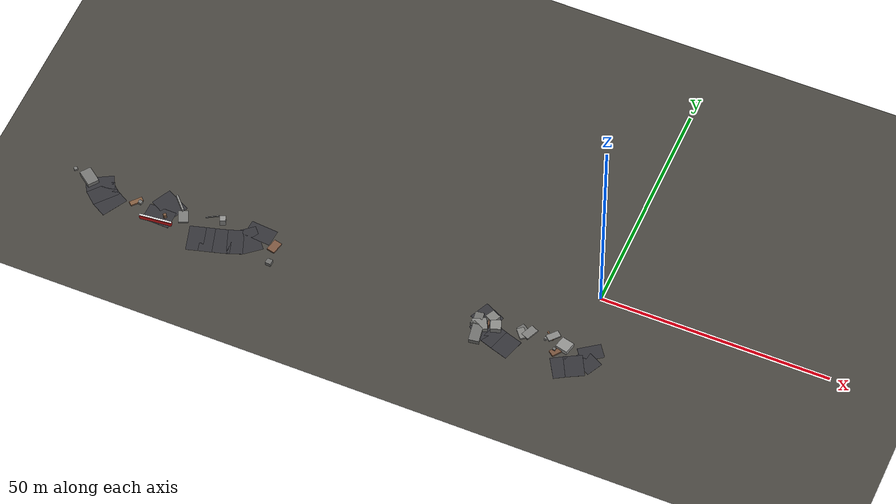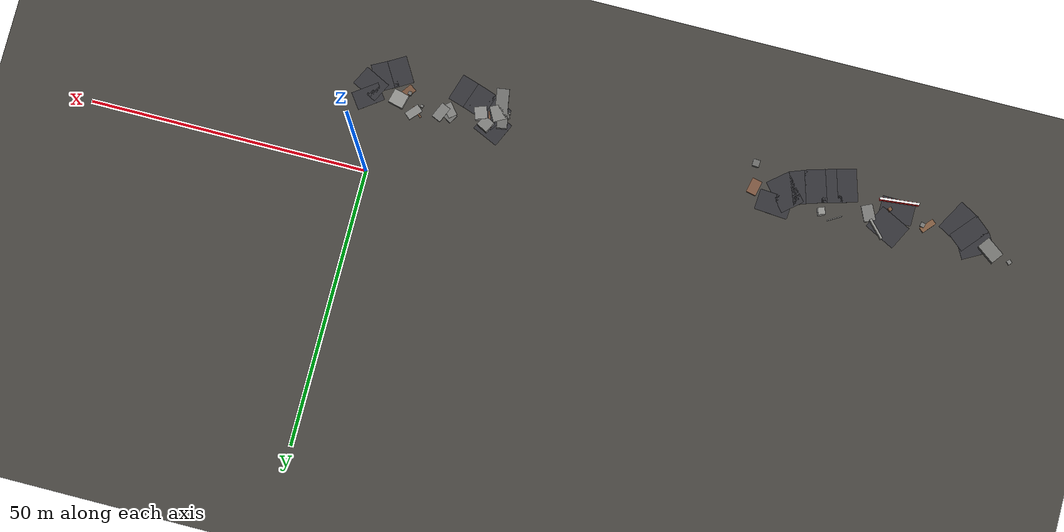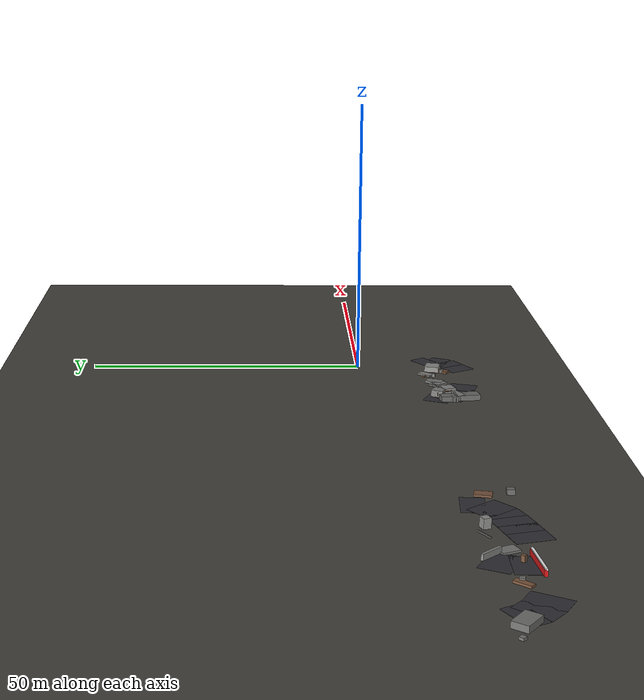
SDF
<sdf version="1.6">
 <world name="navitas_arena">
  <model name="ground_plane">
   <static>true</static>
   <link name="link">
    <collision name="collision">
     <geometry><plane><normal>0 0 1</normal><size>400 400</size></plane></geometry>
     <surface><friction><ode><mu>0.820</mu><mu2>0.820</mu2></ode></friction></surface>
    </collision>
    <visual name="visual">
     <cast_shadows>false</cast_shadows>
     <geometry><plane><normal>0 0 1</normal><size>400 400</size></plane></geometry>
     <material><ambient>0.280 0.270 0.250 1</ambient><diffuse>0.280 0.270 0.250 1</diffuse></material>
    </visual>
   </link>
  </model>
  <model name="road_kolay_1_3">
   <static>true</static>
   <pose>-103.113 -17.444 0.040 0 0 2.628</pose>
   <link name="link">
    <collision name="col"><geometry><box><size>3.838 6.000 0.020</size></box></geometry></collision>
    <visual name="vis">
     <geometry><box><size>3.838 6.000 0.020</size></box></geometry>
     <material><ambient>0.20 0.20 0.22 1</ambient><diffuse>0.20 0.20 0.22 1</diffuse></material>
    </visual>
   </link>
  </model>
  <model name="road_kolay_1_4">
   <static>true</static>
   <pose>-105.395 -15.861 0.040 0 0 2.432</pose>
   <link name="link">
    <collision name="col"><geometry><box><size>3.544 6.000 0.020</size></box></geometry></collision>
    <visual name="vis">
     <geometry><box><size>3.544 6.000 0.020</size></box></geometry>
     <material><ambient>0.20 0.20 0.22 1</ambient><diffuse>0.20 0.20 0.22 1</diffuse></material>
    </visual>
   </link>
  </model>
  <model name="road_kolay_1_5">
   <static>true</static>
   <pose>-106.995 -13.926 0.040 0 0 2.078</pose>
   <link name="link">
    <collision name="col"><geometry><box><size>3.357 6.000 0.020</size></box></geometry></collision>
    <visual name="vis">
     <geometry><box><size>3.357 6.000 0.020</size></box></geometry>
     <material><ambient>0.20 0.20 0.22 1</ambient><diffuse>0.20 0.20 0.22 1</diffuse></material>
    </visual>
   </link>
  </model>
  <model name="road_kolay_2_2">
   <static>true</static>
   <pose>-92.175 -16.583 0.040 0 0 1.553</pose>
   <link name="link">
    <collision name="col"><geometry><box><size>4.067 6.000 0.020</size></box></geometry></collision>
    <visual name="vis">
     <geometry><box><size>4.067 6.000 0.020</size></box></geometry>
     <material><ambient>0.20 0.20 0.22 1</ambient><diffuse>0.20 0.20 0.22 1</diffuse></material>
    </visual>
   </link>
  </model>
  <model name="road_kolay_2_3">
   <static>true</static>
   <pose>-91.289 -13.328 0.040 0 0 1.097</pose>
   <link name="link">
    <collision name="col"><geometry><box><size>4.657 6.000 0.020</size></box></geometry></collision>
    <visual name="vis">
     <geometry><box><size>4.657 6.000 0.020</size></box></geometry>
     <material><ambient>0.20 0.20 0.22 1</ambient><diffuse>0.20 0.20 0.22 1</diffuse></material>
    </visual>
   </link>
  </model>
  <model name="road_kolay_3_4">
   <static>true</static>
   <pose>-82.713 -18.775 0.040 0 0 0.281</pose>
   <link name="link">
    <collision name="col"><geometry><box><size>3.518 6.000 0.020</size></box></geometry></collision>
    <visual name="vis">
     <geometry><box><size>3.518 6.000 0.020</size></box></geometry>
     <material><ambient>0.20 0.20 0.22 1</ambient><diffuse>0.20 0.20 0.22 1</diffuse></material>
    </visual>
   </link>
  </model>
  <model name="road_kolay_3_5">
   <static>true</static>
   <pose>-80.083 -18.038 0.040 0 0 0.267</pose>
   <link name="link">
    <collision name="col"><geometry><box><size>3.745 6.000 0.020</size></box></geometry></collision>
    <visual name="vis">
     <geometry><box><size>3.745 6.000 0.020</size></box></geometry>
     <material><ambient>0.20 0.20 0.22 1</ambient><diffuse>0.20 0.20 0.22 1</diffuse></material>
    </visual>
   </link>
  </model>
  <model name="road_kolay_3_6">
   <static>true</static>
   <pose>-77.370 -17.263 0.040 0 0 0.290</pose>
   <link name="link">
    <collision name="col"><geometry><box><size>3.699 6.000 0.020</size></box></geometry></collision>
    <visual name="vis">
     <geometry><box><size>3.699 6.000 0.020</size></box></geometry>
     <material><ambient>0.20 0.20 0.22 1</ambient><diffuse>0.20 0.20 0.22 1</diffuse></material>
    </visual>
   </link>
  </model>
  <model name="road_kolay_3_7">
   <static>true</static>
   <pose>-74.865 -16.423 0.040 0 0 0.361</pose>
   <link name="link">
    <collision name="col"><geometry><box><size>3.388 6.000 0.020</size></box></geometry></collision>
    <visual name="vis">
     <geometry><box><size>3.388 6.000 0.020</size></box></geometry>
     <material><ambient>0.20 0.20 0.22 1</ambient><diffuse>0.20 0.20 0.22 1</diffuse></material>
    </visual>
   </link>
  </model>
  <model name="road_kolay_3_8">
   <static>true</static>
   <pose>-72.375 -14.872 0.040 0 0 0.698</pose>
   <link name="link">
    <collision name="col"><geometry><box><size>4.361 6.000 0.020</size></box></geometry></collision>
    <visual name="vis">
     <geometry><box><size>4.361 6.000 0.020</size></box></geometry>
     <material><ambient>0.20 0.20 0.22 1</ambient><diffuse>0.20 0.20 0.22 1</diffuse></material>
    </visual>
   </link>
  </model>
  <model name="road_kolay_3_9">
   <static>true</static>
   <pose>-70.939 -12.340 0.040 0 0 1.493</pose>
   <link name="link">
    <collision name="col"><geometry><box><size>3.749 6.000 0.020</size></box></geometry></collision>
    <visual name="vis">
     <geometry><box><size>3.749 6.000 0.020</size></box></geometry>
     <material><ambient>0.20 0.20 0.22 1</ambient><diffuse>0.20 0.20 0.22 1</diffuse></material>
    </visual>
   </link>
  </model>
  <model name="blk_kolay_1_0_1">
   <static>true</static>
   <pose>-109.596 -13.677 0.500 0 0 2.502</pose>
   <link name="link">
    <collision name="col"><geometry><box><size>3.801 2.501 1.000</size></box></geometry></collision>
    <visual name="vis">
     <geometry><box><size>3.801 2.501 1.000</size></box></geometry>
     <material><ambient>0.46 0.46 0.45 1</ambient><diffuse>0.46 0.46 0.45 1</diffuse></material>
    </visual>
   </link>
  </model>
  <model name="bar_kolay_2">
   <static>true</static>
   <pose>-92.203 -18.167 0.500 0 0 3.241</pose>
   <link name="link">
    <collision name="col"><geometry><box><size>7.000 0.500 1.000</size></box></geometry></collision>
    <visual name="vis">
     <geometry><box><size>7.000 0.500 1.000</size></box></geometry>
     <material><ambient>0.85 0.10 0.10 1</ambient><diffuse>0.85 0.10 0.10 1</diffuse></material>
    </visual>
   </link>
  </model>
  <model name="bar_kolay_2b">
   <static>true</static>
   <pose>-92.203 -18.167 1.000 0 0 3.241</pose>
   <link name="link">
    <collision name="col"><geometry><box><size>7.000 0.400 0.300</size></box></geometry></collision>
    <visual name="vis">
     <geometry><box><size>7.000 0.400 0.300</size></box></geometry>
     <material><ambient>0.95 0.95 0.95 1</ambient><diffuse>0.95 0.95 0.95 1</diffuse></material>
    </visual>
   </link>
  </model>
  <model name="blk_kolay_2_0_3">
   <static>true</static>
   <pose>-89.310 -12.367 0.500 0 0 2.321</pose>
   <link name="link">
    <collision name="col"><geometry><box><size>3.957 0.406 1.000</size></box></geometry></collision>
    <visual name="vis">
     <geometry><box><size>3.957 0.406 1.000</size></box></geometry>
     <material><ambient>0.57 0.57 0.56 1</ambient><diffuse>0.57 0.57 0.56 1</diffuse></material>
    </visual>
   </link>
  </model>
  <model name="deb_kolay_12">
   <static>true</static>
   <pose>-81.868 -12.493 0.123 0 0 0.534</pose>
   <link name="link">
    <collision name="col"><geometry><box><size>2.913 0.177 0.247</size></box></geometry></collision>
    <visual name="vis">
     <geometry><box><size>2.913 0.177 0.247</size></box></geometry>
     <material><ambient>0.44 0.44 0.43 1</ambient><diffuse>0.44 0.44 0.43 1</diffuse></material>
    </visual>
   </link>
  </model>
  <model name="deb_kolay_43">
   <static>true</static>
   <pose>-97.096 -15.183 0.306 0 0 2.922</pose>
   <link name="link">
    <collision name="col"><geometry><box><size>0.783 0.783 0.611</size></box></geometry></collision>
    <visual name="vis">
     <geometry><box><size>0.783 0.783 0.611</size></box></geometry>
     <material><ambient>0.46 0.46 0.45 1</ambient><diffuse>0.46 0.46 0.45 1</diffuse></material>
    </visual>
   </link>
  </model>
  <model name="deb_kolay_48">
   <static>true</static>
   <pose>-98.027 -15.254 0.185 0 0 0.854</pose>
   <link name="link">
    <collision name="col"><geometry><box><size>2.819 1.029 0.370</size></box></geometry></collision>
    <visual name="vis">
     <geometry><box><size>2.819 1.029 0.370</size></box></geometry>
     <material><ambient>0.51 0.36 0.25 1</ambient><diffuse>0.51 0.36 0.25 1</diffuse></material>
    </visual>
   </link>
  </model>
  <model name="deb_kolay_60">
   <static>true</static>
   <pose>-66.201 -18.562 0.414 0 0 1.528</pose>
   <link name="link">
    <collision name="col"><geometry><box><size>1.235 1.235 0.828</size></box></geometry></collision>
    <visual name="vis">
     <geometry><box><size>1.235 1.235 0.828</size></box></geometry>
     <material><ambient>0.42 0.42 0.41 1</ambient><diffuse>0.42 0.42 0.41 1</diffuse></material>
    </visual>
   </link>
  </model>
  <model name="deb_kolay_99">
   <static>true</static>
   <pose>-113.321 -12.569 0.204 0 0 0.782</pose>
   <link name="link">
    <collision name="col"><geometry><box><size>0.753 0.753 0.408</size></box></geometry></collision>
    <visual name="vis">
     <geometry><box><size>0.753 0.753 0.408</size></box></geometry>
     <material><ambient>0.48 0.48 0.47 1</ambient><diffuse>0.48 0.48 0.47 1</diffuse></material>
    </visual>
   </link>
  </model>
  <model name="deb_kolay_105">
   <static>true</static>
   <pose>-79.251 -12.974 0.799 0 0 0.375</pose>
   <link name="link">
    <collision name="col"><geometry><box><size>1.244 1.244 1.598</size></box></geometry></collision>
    <visual name="vis">
     <geometry><box><size>1.244 1.244 1.598</size></box></geometry>
     <material><ambient>0.57 0.57 0.56 1</ambient><diffuse>0.57 0.57 0.56 1</diffuse></material>
    </visual>
   </link>
  </model>
  <model name="deb_kolay_110">
   <static>true</static>
   <pose>-87.406 -14.901 0.163 0 0 2.005</pose>
   <link name="link">
    <collision name="col"><geometry><box><size>2.914 2.057 0.325</size></box></geometry></collision>
    <visual name="vis">
     <geometry><box><size>2.914 2.057 0.325</size></box></geometry>
     <material><ambient>0.48 0.48 0.47 1</ambient><diffuse>0.48 0.48 0.47 1</diffuse></material>
    </visual>
   </link>
  </model>
  <model name="deb_kolay_134">
   <static>true</static>
   <pose>-66.887 -14.422 0.182 0 0 1.361</pose>
   <link name="link">
    <collision name="col"><geometry><box><size>2.731 1.789 0.364</size></box></geometry></collision>
    <visual name="vis">
     <geometry><box><size>2.731 1.789 0.364</size></box></geometry>
     <material><ambient>0.49 0.34 0.25 1</ambient><diffuse>0.49 0.34 0.25 1</diffuse></material>
    </visual>
   </link>
  </model>
  <model name="chic_kolay_0">
   <static>true</static>
   <pose>-90.911 -16.430 0.500 0 0 2.411</pose>
   <link name="link">
    <collision name="col"><geometry><box><size>0.618 0.618 1.000</size></box></geometry></collision>
    <visual name="vis">
     <geometry><box><size>0.618 0.618 1.000</size></box></geometry>
     <material><ambient>0.49 0.35 0.25 1</ambient><diffuse>0.49 0.35 0.25 1</diffuse></material>
    </visual>
   </link>
  </model>
  <model name="road_orta_1_3">
   <static>true</static>
   <pose>-13.417 -18.160 0.040 0 0 2.839</pose>
   <link name="link">
    <collision name="col"><geometry><box><size>3.953 5.000 0.020</size></box></geometry></collision>
    <visual name="vis">
     <geometry><box><size>3.953 5.000 0.020</size></box></geometry>
     <material><ambient>0.20 0.20 0.22 1</ambient><diffuse>0.20 0.20 0.22 1</diffuse></material>
    </visual>
   </link>
  </model>
  <model name="road_orta_1_4">
   <static>true</static>
   <pose>-16.300 -17.214 0.040 0 0 2.810</pose>
   <link name="link">
    <collision name="col"><geometry><box><size>3.917 5.000 0.020</size></box></geometry></collision>
    <visual name="vis">
     <geometry><box><size>3.917 5.000 0.020</size></box></geometry>
     <material><ambient>0.20 0.20 0.22 1</ambient><diffuse>0.20 0.20 0.22 1</diffuse></material>
    </visual>
   </link>
  </model>
  <model name="road_orta_1_5">
   <static>true</static>
   <pose>-19.071 -15.861 0.040 0 0 2.572</pose>
   <link name="link">
    <collision name="col"><geometry><box><size>4.094 5.000 0.020</size></box></geometry></collision>
    <visual name="vis">
     <geometry><box><size>4.094 5.000 0.020</size></box></geometry>
     <material><ambient>0.20 0.20 0.22 1</ambient><diffuse>0.20 0.20 0.22 1</diffuse></material>
    </visual>
   </link>
  </model>
  <model name="road_orta_1_6">
   <static>true</static>
   <pose>-19.651 -13.328 0.040 0 0 1.142</pose>
   <link name="link">
    <collision name="col"><geometry><box><size>4.577 5.000 0.020</size></box></geometry></collision>
    <visual name="vis">
     <geometry><box><size>4.577 5.000 0.020</size></box></geometry>
     <material><ambient>0.20 0.20 0.22 1</ambient><diffuse>0.20 0.20 0.22 1</diffuse></material>
    </visual>
   </link>
  </model>
  <model name="road_orta_2_1">
   <static>true</static>
   <pose>-1.335 -18.833 0.040 0 0 0.536</pose>
   <link name="link">
    <collision name="col"><geometry><box><size>3.511 5.000 0.020</size></box></geometry></collision>
    <visual name="vis">
     <geometry><box><size>3.511 5.000 0.020</size></box></geometry>
     <material><ambient>0.20 0.20 0.22 1</ambient><diffuse>0.20 0.20 0.22 1</diffuse></material>
    </visual>
   </link>
  </model>
  <model name="road_orta_2_2">
   <static>true</static>
   <pose>1.156 -17.444 0.040 0 0 0.486</pose>
   <link name="link">
    <collision name="col"><geometry><box><size>3.995 5.000 0.020</size></box></geometry></collision>
    <visual name="vis">
     <geometry><box><size>3.995 5.000 0.020</size></box></geometry>
     <material><ambient>0.20 0.20 0.22 1</ambient><diffuse>0.20 0.20 0.22 1</diffuse></material>
    </visual>
   </link>
  </model>
  <model name="road_orta_2_3">
   <static>true</static>
   <pose>3.175 -15.427 0.040 0 0 1.106</pose>
   <link name="link">
    <collision name="col"><geometry><box><size>3.799 5.000 0.020</size></box></geometry></collision>
    <visual name="vis">
     <geometry><box><size>3.799 5.000 0.020</size></box></geometry>
     <material><ambient>0.20 0.20 0.22 1</ambient><diffuse>0.20 0.20 0.22 1</diffuse></material>
    </visual>
   </link>
  </model>
  <model name="road_orta_2_4">
   <static>true</static>
   <pose>3.120 -13.153 0.040 0 0 2.196</pose>
   <link name="link">
    <collision name="col"><geometry><box><size>3.312 5.000 0.020</size></box></geometry></collision>
    <visual name="vis">
     <geometry><box><size>3.312 5.000 0.020</size></box></geometry>
     <material><ambient>0.20 0.20 0.22 1</ambient><diffuse>0.20 0.20 0.22 1</diffuse></material>
    </visual>
   </link>
  </model>
  <model name="blk_orta_1_0_0">
   <static>true</static>
   <pose>-20.149 -17.893 0.500 0 0 1.729</pose>
   <link name="link">
    <collision name="col"><geometry><box><size>4.793 2.223 1.000</size></box></geometry></collision>
    <visual name="vis">
     <geometry><box><size>4.793 2.223 1.000</size></box></geometry>
     <material><ambient>0.44 0.44 0.43 1</ambient><diffuse>0.44 0.44 0.43 1</diffuse></material>
    </visual>
   </link>
  </model>
  <model name="blk_orta_1_0_1">
   <static>true</static>
   <pose>-18.009 -13.861 0.500 0 0 2.092</pose>
   <link name="link">
    <collision name="col"><geometry><box><size>0.652 0.652 1.000</size></box></geometry></collision>
    <visual name="vis">
     <geometry><box><size>0.652 0.652 1.000</size></box></geometry>
     <material><ambient>0.59 0.59 0.58 1</ambient><diffuse>0.59 0.59 0.58 1</diffuse></material>
    </visual>
   </link>
  </model>
  <model name="blk_orta_1_0_2">
   <static>true</static>
   <pose>-17.036 -15.044 0.647 0 0 0.344</pose>
   <link name="link">
    <collision name="col"><geometry><box><size>2.237 2.237 1.294</size></box></geometry></collision>
    <visual name="vis">
     <geometry><box><size>2.237 2.237 1.294</size></box></geometry>
     <material><ambient>0.54 0.54 0.53 1</ambient><diffuse>0.54 0.54 0.53 1</diffuse></material>
    </visual>
   </link>
  </model>
  <model name="blk_orta_1_0_3">
   <static>true</static>
   <pose>-21.038 -14.723 0.500 0 0 1.711</pose>
   <link name="link">
    <collision name="col"><geometry><box><size>2.816 1.821 1.000</size></box></geometry></collision>
    <visual name="vis">
     <geometry><box><size>2.816 1.821 1.000</size></box></geometry>
     <material><ambient>0.43 0.43 0.42 1</ambient><diffuse>0.43 0.43 0.42 1</diffuse></material>
    </visual>
   </link>
  </model>
  <model name="blk_orta_1_0_4">
   <static>true</static>
   <pose>-18.336 -13.358 0.628 0 0 1.096</pose>
   <link name="link">
    <collision name="col"><geometry><box><size>2.135 2.135 1.255</size></box></geometry></collision>
    <visual name="vis">
     <geometry><box><size>2.135 2.135 1.255</size></box></geometry>
     <material><ambient>0.50 0.50 0.49 1</ambient><diffuse>0.50 0.50 0.49 1</diffuse></material>
    </visual>
   </link>
  </model>
  <model name="blk_orta_1_0_5">
   <static>true</static>
   <pose>-20.205 -15.966 0.500 0 0 2.066</pose>
   <link name="link">
    <collision name="col"><geometry><box><size>2.810 2.992 1.000</size></box></geometry></collision>
    <visual name="vis">
     <geometry><box><size>2.810 2.992 1.000</size></box></geometry>
     <material><ambient>0.51 0.51 0.50 1</ambient><diffuse>0.51 0.51 0.50 1</diffuse></material>
    </visual>
   </link>
  </model>
  <model name="blk_orta_1_0_6">
   <static>true</static>
   <pose>-20.641 -16.072 0.500 0 0 0.109</pose>
   <link name="link">
    <collision name="col"><geometry><box><size>3.028 0.337 1.000</size></box></geometry></collision>
    <visual name="vis">
     <geometry><box><size>3.028 0.337 1.000</size></box></geometry>
     <material><ambient>0.46 0.46 0.45 1</ambient><diffuse>0.46 0.46 0.45 1</diffuse></material>
    </visual>
   </link>
  </model>
  <model name="blk_orta_1_0_7">
   <static>true</static>
   <pose>-18.822 -14.323 0.500 0 0 1.889</pose>
   <link name="link">
    <collision name="col"><geometry><box><size>2.859 0.285 1.000</size></box></geometry></collision>
    <visual name="vis">
     <geometry><box><size>2.859 0.285 1.000</size></box></geometry>
     <material><ambient>0.49 0.34 0.25 1</ambient><diffuse>0.49 0.34 0.25 1</diffuse></material>
    </visual>
   </link>
  </model>
  <model name="deb_orta_5">
   <static>true</static>
   <pose>-6.619 -13.716 0.324 0 0 1.196</pose>
   <link name="link">
    <collision name="col"><geometry><box><size>0.456 0.456 0.648</size></box></geometry></collision>
    <visual name="vis">
     <geometry><box><size>0.456 0.456 0.648</size></box></geometry>
     <material><ambient>0.51 0.51 0.50 1</ambient><diffuse>0.51 0.51 0.50 1</diffuse></material>
    </visual>
   </link>
  </model>
  <model name="deb_orta_16">
   <static>true</static>
   <pose>-6.000 -12.513 0.108 0 0 2.441</pose>
   <link name="link">
    <collision name="col"><geometry><box><size>2.328 0.280 0.216</size></box></geometry></collision>
    <visual name="vis">
     <geometry><box><size>2.328 0.280 0.216</size></box></geometry>
     <material><ambient>0.54 0.38 0.27 1</ambient><diffuse>0.54 0.38 0.27 1</diffuse></material>
    </visual>
   </link>
  </model>
  <model name="deb_orta_21">
   <static>true</static>
   <pose>-5.426 -12.348 0.146 0 0 0.842</pose>
   <link name="link">
    <collision name="col"><geometry><box><size>2.744 1.489 0.292</size></box></geometry></collision>
    <visual name="vis">
     <geometry><box><size>2.744 1.489 0.292</size></box></geometry>
     <material><ambient>0.53 0.53 0.52 1</ambient><diffuse>0.53 0.53 0.52 1</diffuse></material>
    </visual>
   </link>
  </model>
  <model name="deb_orta_48">
   <static>true</static>
   <pose>-3.226 -15.184 0.178 0 0 0.942</pose>
   <link name="link">
    <collision name="col"><geometry><box><size>3.540 1.458 0.356</size></box></geometry></collision>
    <visual name="vis">
     <geometry><box><size>3.540 1.458 0.356</size></box></geometry>
     <material><ambient>0.46 0.32 0.23 1</ambient><diffuse>0.46 0.32 0.23 1</diffuse></material>
    </visual>
   </link>
  </model>
  <model name="deb_orta_116">
   <static>true</static>
   <pose>-11.563 -14.292 0.195 0 0 2.261</pose>
   <link name="link">
    <collision name="col"><geometry><box><size>2.521 1.589 0.391</size></box></geometry></collision>
    <visual name="vis">
     <geometry><box><size>2.521 1.589 0.391</size></box></geometry>
     <material><ambient>0.50 0.50 0.49 1</ambient><diffuse>0.50 0.50 0.49 1</diffuse></material>
    </visual>
   </link>
  </model>
  <model name="deb_orta_118">
   <static>true</static>
   <pose>-3.975 -15.411 0.348 0 0 3.013</pose>
   <link name="link">
    <collision name="col"><geometry><box><size>0.649 0.649 0.697</size></box></geometry></collision>
    <visual name="vis">
     <geometry><box><size>0.649 0.649 0.697</size></box></geometry>
     <material><ambient>0.43 0.43 0.42 1</ambient><diffuse>0.43 0.43 0.42 1</diffuse></material>
    </visual>
   </link>
  </model>
  <model name="deb_orta_127">
   <static>true</static>
   <pose>-11.762 -13.311 0.144 0 0 2.586</pose>
   <link name="link">
    <collision name="col"><geometry><box><size>1.961 1.757 0.287</size></box></geometry></collision>
    <visual name="vis">
     <geometry><box><size>1.961 1.757 0.287</size></box></geometry>
     <material><ambient>0.42 0.42 0.41 1</ambient><diffuse>0.42 0.42 0.41 1</diffuse></material>
    </visual>
   </link>
  </model>
  <model name="deb_orta_144">
   <static>true</static>
   <pose>-10.159 -13.510 0.200 0 0 1.155</pose>
   <link name="link">
    <collision name="col"><geometry><box><size>2.976 1.769 0.400</size></box></geometry></collision>
    <visual name="vis">
     <geometry><box><size>2.976 1.769 0.400</size></box></geometry>
     <material><ambient>0.49 0.49 0.48 1</ambient><diffuse>0.49 0.49 0.48 1</diffuse></material>
    </visual>
   </link>
  </model>
  <model name="chic_orta_0">
   <static>true</static>
   <pose>-2.305 -13.915 0.500 0 0 2.896</pose>
   <link name="link">
    <collision name="col"><geometry><box><size>2.734 2.578 1.000</size></box></geometry></collision>
    <visual name="vis">
     <geometry><box><size>2.734 2.578 1.000</size></box></geometry>
     <material><ambient>0.57 0.57 0.56 1</ambient><diffuse>0.57 0.57 0.56 1</diffuse></material>
    </visual>
   </link>
  </model>
 </world>
</sdf>
